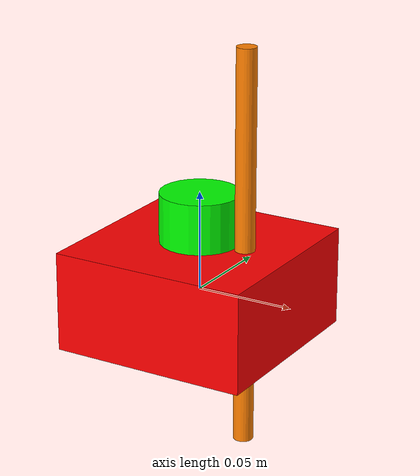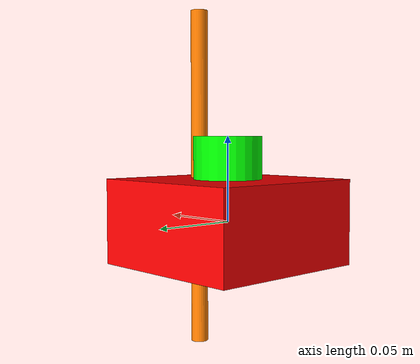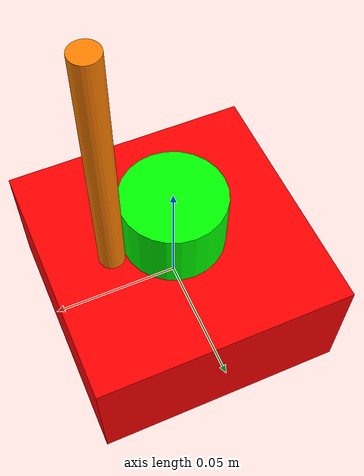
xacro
<?xml version="1.0"?>
<robot name="qube_servo_3_real" xmlns:xacro="http://www.ros.org/wiki/xacro">

  <!-- arguments that can be passed from launch file -->
  <xacro:arg name="board_type" default="q8_usb"/>
  <xacro:arg name="board_identifier" default="0"/>

  <!-- world link -->
  <link name="world"/>

  <!-- base link -->
  <link name="base_link">
    <visual>
      <geometry>
        <box size="0.1 0.1 0.05"/>
      </geometry>
      <material name="red">
        <color rgba="1 0 0 1"/>
      </material>
    </visual>
  </link>

  <!-- rotor link -->
  <link name="rotor_link">
    <visual>
      <geometry>
        <cylinder radius="0.02" length="0.05"/>
      </geometry>
      <material name="green">
        <color rgba="0 1 0 1"/>
      </material>
    </visual>
  </link>

  <!-- pendulum link -->
  <link name="pendulum_link">
    <visual>
      <geometry>
        <cylinder radius="0.005" length="0.2"/>
      </geometry>
      <material name="orange">
        <color rgba="1 0.5 0 1"/>
      </material>
    </visual>
  </link>

  <!-- base to world joint -->
  <joint name="base_joint" type="fixed">
    <parent link="world"/>
    <child link="base_link"/>
    <origin xyz="0 0 0" rpy="0 0 0"/>
  </joint>

  <!-- rotor joint (motor) -->
  <joint name="rotor_joint" type="revolute">
    <parent link="base_link"/>
    <child link="rotor_link"/>
    <origin xyz="0 0 0.025" rpy="0 0 0"/>
    <axis xyz="0 0 1"/>
    <limit effort="1.5" velocity="100" lower="-3.14159" upper="3.14159"/>
  </joint>

  <!-- pendulum joint -->
  <joint name="pendulum_joint" type="revolute">
    <parent link="rotor_link"/>
    <child link="pendulum_link"/>
    <origin xyz="0.025 0 0" rpy="0 0 0"/>
    <axis xyz="0 1 0"/>
    <limit effort="0.1" velocity="100" lower="-3.14159" upper="3.14159"/>
  </joint>

</robot>
